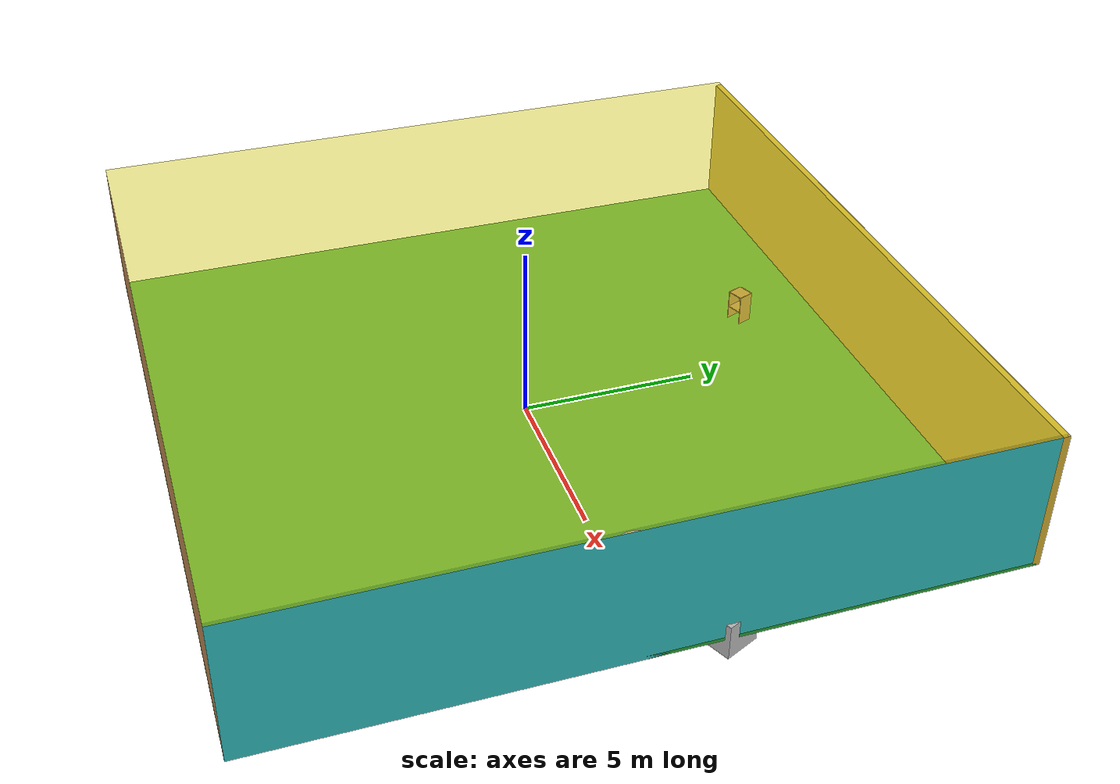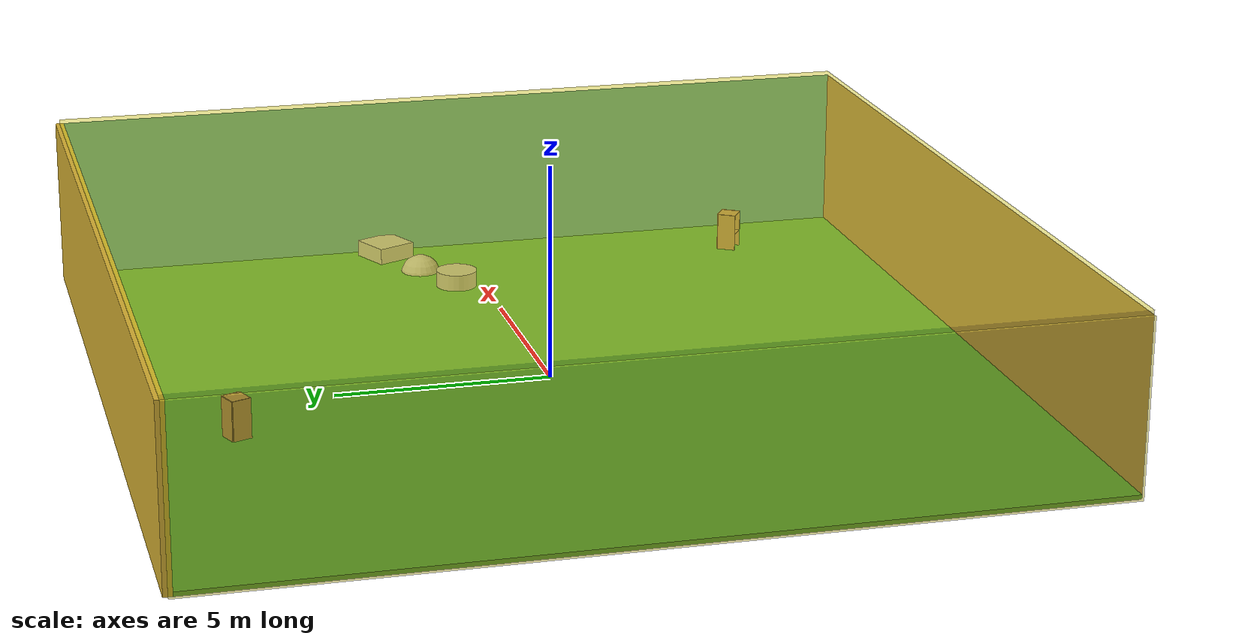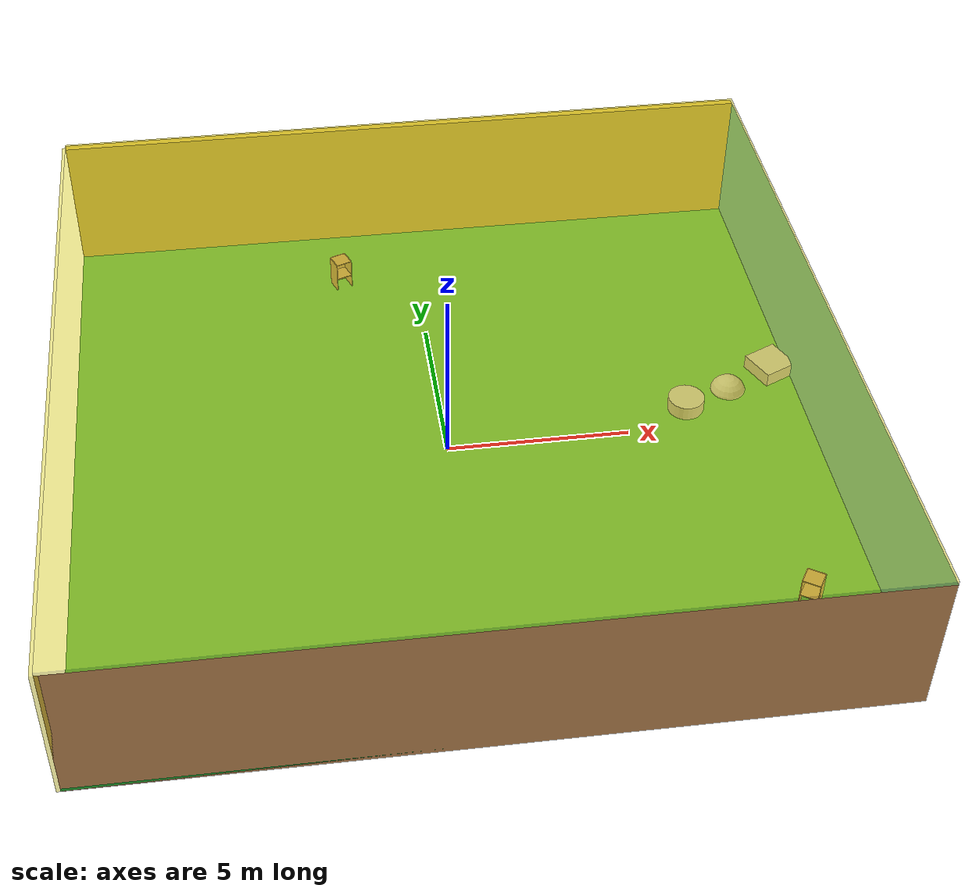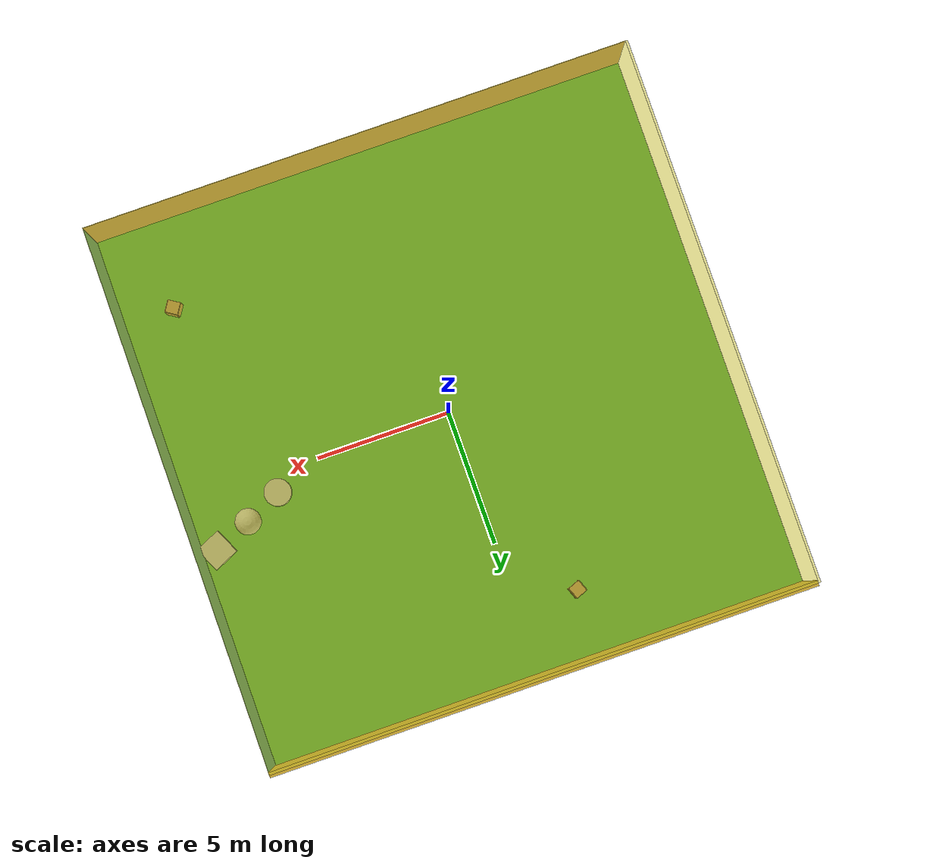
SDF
<sdf version="1.4">
 <world name="default">
  <physics type="ode">
   <max_step_size>0.001</max_step_size>
   <real_time_factor>1</real_time_factor>
   <real_time_update_rate>1000</real_time_update_rate>
   <gravity>0 0 -9.8</gravity>
  </physics>
  <scene><ambient>0.4 0.4 0.4 1</ambient><background>0.7 0.7 0.7 1</background><shadows>1</shadows></scene>
  <model name="Surrounding">
   <static>1</static>
   <link name="Ceiling">
    <collision name="Ceiling_Collision"><geometry><box><size>20 20 0.1</size></box></geometry></collision>
    <visual name="Ceiling_Visual">
     <geometry><box><size>20 20 0.1</size></box></geometry>
     <material>
      <script>
       <uri>file://media/materials/scripts/gazebo.material</uri>
       <name>Gazebo/YellowTransparent</name>
      </script>
     </material>
    </visual>
    <pose>0 0 4.05 0 0 0</pose>
   </link>
   <link name="Wall_South">
    <collision name="Wall_South_Collision">
     <geometry><box><size>20 0 4</size></box></geometry>
     <pose>0 0 2 0 -0 0</pose>
    </collision>
    <visual name="Wall_South_Visual">
     <pose>0 0 2 0 -0 0</pose>
     <geometry><box><size>20 0 4</size></box></geometry>
     <material>
      <script><uri>file://media/materials/scripts/gazebo.material</uri><name>Gazebo/Wood</name></script>
     </material>
    </visual>
    <velocity_decay><linear>0</linear><angular>0</angular></velocity_decay>
    <pose>0 -10 0 0 -0 0</pose>
   </link>
   <link name="Wall_East">
    <collision name="Wall_21_Collision">
     <geometry><box><size>20 0 4</size></box></geometry>
     <pose>0 0 2 0 -0 0</pose>
    </collision>
    <visual name="Wall_21_Visual">
     <pose>0 0 2 0 -0 0</pose>
     <geometry><box><size>20 0 4</size></box></geometry>
     <material>
      <script><uri>file://media/materials/scripts/gazebo.material</uri><name>Gazebo/TurquoiseGlow</name></script>
     </material>
    </visual>
    <velocity_decay><linear>0</linear><angular>0</angular></velocity_decay>
    <pose>10 0 0 0 -0 1.5708</pose>
   </link>
   <link name="Wall_North">
    <collision name="Wall_22_Collision">
     <geometry><box><size>20 0.2 4</size></box></geometry>
     <pose>0 0 2 0 -0 0</pose>
    </collision>
    <visual name="Wall_22_Visual">
     <pose>0 0 2 0 -0 0</pose>
     <geometry><box><size>20 0.2 4</size></box></geometry>
     <material>
      <script><uri>file://media/materials/scripts/gazebo.material</uri><name>Gazebo/Gold</name></script>
     </material>
    </visual>
    <velocity_decay><linear>0</linear><angular>0</angular></velocity_decay>
    <pose>0 10 0 0 -0 0</pose>
   </link>
   <link name="Wall_West">
    <collision name="Wall_23_Collision">
     <geometry><box><size>20 0.2 4</size></box></geometry>
     <pose>0 0 2 0 -0 0</pose>
    </collision>
    <visual name="Wall_23_Visual">
     <pose>0 0 2 0 -0 0</pose>
     <geometry><box><size>20 0.2 4</size></box></geometry>
     <material>
      <script>
       <uri>file://media/materials/scripts/gazebo.material</uri>
       <name>Gazebo/YellowTransparent</name>
      </script>
     </material>
    </visual>
    <velocity_decay><linear>0</linear><angular>0</angular></velocity_decay>
    <pose>-10 0 0 0 0 -1.5708</pose>
   </link>
   <link name="Ground_link">
    <collision name="collision">
     <pose>0 0 .05 0 -0 0</pose>
     <geometry><box><size>20 20 0.1</size></box></geometry>
    </collision>
    <visual name="visual">
     <pose>0 0 .05 0 -0 0</pose>
     <geometry><box><size>20 20 0.1</size></box></geometry>
     <material>
      <script><uri>file://media/materials/scripts/gazebo.material</uri><name>Gazebo/Green</name></script>
     </material>
    </visual>
   </link>
   <static>1</static>
  </model>
  <spherical_coordinates>
   <surface_model>EARTH_WGS84</surface_model>
   <latitude_deg>0</latitude_deg>
   <longitude_deg>0</longitude_deg>
   <elevation>0</elevation>
   <heading_deg>0</heading_deg>
  </spherical_coordinates>
  <light name="lightball_0" type="diffuse">
   <diffuse>0.8 0.8 0.8 1</diffuse>
   <specular>0.2 0.2 0.2 1</specular>
   <attenuation>
    <range>100</range>
    <constant>0.7</constant>
    <linear>0.01</linear>
    <quadratic>0.001</quadratic>
   </attenuation>
   <direction>-0.5 0.1 -0.9</direction>
   <pose>-9.87257258933 4.6745386704 2.11320592279 0 0 0</pose>
  </light>
  <light name="lightball_1" type="diffuse">
   <diffuse>0.8 0.8 0.8 1</diffuse>
   <specular>0.2 0.2 0.2 1</specular>
   <attenuation>
    <range>100</range>
    <constant>0.7</constant>
    <linear>0.01</linear>
    <quadratic>0.001</quadratic>
   </attenuation>
   <direction>-0.5 0.1 -0.9</direction>
   <pose>0.97652307727 5.2823808475 3.42060324967 0 0 0</pose>
  </light>
  <light name="lightball_2" type="diffuse">
   <diffuse>0.8 0.8 0.8 1</diffuse>
   <specular>0.2 0.2 0.2 1</specular>
   <attenuation>
    <range>100</range>
    <constant>0.7</constant>
    <linear>0.01</linear>
    <quadratic>0.001</quadratic>
   </attenuation>
   <direction>-0.5 0.1 -0.9</direction>
   <pose>4.50100407516 -0.313296749281 2.28344404201 0 0 0</pose>
  </light>
  <light name="lightball_3" type="diffuse">
   <diffuse>0.8 0.8 0.8 1</diffuse>
   <specular>0.2 0.2 0.2 1</specular>
   <attenuation>
    <range>100</range>
    <constant>0.7</constant>
    <linear>0.01</linear>
    <quadratic>0.001</quadratic>
   </attenuation>
   <direction>-0.5 0.1 -0.9</direction>
   <pose>0.869817379879 3.85373314808 2.13649224176 0 0 0</pose>
  </light>
  <light name="lightball_4" type="diffuse">
   <diffuse>0.8 0.8 0.8 1</diffuse>
   <specular>0.2 0.2 0.2 1</specular>
   <attenuation>
    <range>100</range>
    <constant>0.7</constant>
    <linear>0.01</linear>
    <quadratic>0.001</quadratic>
   </attenuation>
   <direction>-0.5 0.1 -0.9</direction>
   <pose>5.92308187193 7.96755494277 0.711787057402 0 0 0</pose>
  </light>
  <light name="lightball_5" type="diffuse">
   <diffuse>0.8 0.8 0.8 1</diffuse>
   <specular>0.2 0.2 0.2 1</specular>
   <attenuation>
    <range>100</range>
    <constant>0.7</constant>
    <linear>0.01</linear>
    <quadratic>0.001</quadratic>
   </attenuation>
   <direction>-0.5 0.1 -0.9</direction>
   <pose>-1.21836933931 -3.0990236191 1.16606263404 0 0 0</pose>
  </light>
  <light name="lightball_6" type="diffuse">
   <diffuse>0.8 0.8 0.8 1</diffuse>
   <specular>0.2 0.2 0.2 1</specular>
   <attenuation>
    <range>100</range>
    <constant>0.7</constant>
    <linear>0.01</linear>
    <quadratic>0.001</quadratic>
   </attenuation>
   <direction>-0.5 0.1 -0.9</direction>
   <pose>-9.6400500343 -5.14632199544 3.40847541767 0 0 0</pose>
  </light>
  <light name="lightball_7" type="diffuse">
   <diffuse>0.8 0.8 0.8 1</diffuse>
   <specular>0.2 0.2 0.2 1</specular>
   <attenuation>
    <range>100</range>
    <constant>0.7</constant>
    <linear>0.01</linear>
    <quadratic>0.001</quadratic>
   </attenuation>
   <direction>-0.5 0.1 -0.9</direction>
   <pose>-1.11517067383 7.00443758186 2.5111553152 0 0 0</pose>
  </light>
  <light name="lightball_8" type="diffuse">
   <diffuse>0.8 0.8 0.8 1</diffuse>
   <specular>0.2 0.2 0.2 1</specular>
   <attenuation>
    <range>100</range>
    <constant>0.7</constant>
    <linear>0.01</linear>
    <quadratic>0.001</quadratic>
   </attenuation>
   <direction>-0.5 0.1 -0.9</direction>
   <pose>-5.80163766723 -6.09447034365 2.47172563615 0 0 0</pose>
  </light>
  <include><uri>model://cabinet</uri><pose>-2.23624919643 7.51652623676 0 0 0 1.93476721442</pose></include>
  <include><uri>model://cabinet</uri><pose>8.11846039385 -6.76668386342 0 0 0 1.00046496665</pose></include>
  <include>
   <uri>model://textured_shapes</uri>
   <pose>8.11227469935 1.33893723477 0 0 0 2.00288975629</pose>
  </include>
 </world>
</sdf>

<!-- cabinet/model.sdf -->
<sdf version="1.5">
  <model name="cabinet">
    <static>true</static>
    <link name="cabinet_bottom_plate">
      <inertial>
        <pose>0 0 -1 0 0 0</pose>
        <inertia>
          <ixx>2.050000</ixx>
          <ixy>0</ixy>
          <ixz>0</ixz>
          <iyy>2.050000</iyy>
          <iyz>0</iyz>
          <izz>2.050000</izz>
        </inertia>
        <mass>25.000000</mass>
      </inertial>
      <collision name="cabinet_bottom_plate_geom">
        <pose>0 0 0.010000 0 0 0</pose>
        <geometry>
          <box>
            <size>0.450000 0.450000 0.020000</size>
          </box>
        </geometry>
      </collision>
      <visual name="cabinet_bottom_plate_geom_visual">
        <pose>0 0 0.010000 0 0 0</pose>
        <geometry>
          <box>
            <size>0.450000 0.450000 0.020000</size>
          </box>
        </geometry>
        <material>
          <script>
            <uri>model://media/materials/scripts/gazebo.material</uri>
            <name>Gazebo/Wood</name>
          </script>
        </material>
      </visual>
      <collision name="cabinet_bottom_plate_geom_cabinet_back_plate">
        <pose>0.235000 0 0.510000 0 0 0</pose>
        <geometry>
          <box>
            <size>0.020000 0.450000 1.020000</size>
          </box>
        </geometry>
      </collision>
      <visual name="cabinet_bottom_plate_geom_cabinet_back_plate_visual">
        <pose>0.235000 0 0.510000 0 0 0</pose>
        <geometry>
          <box>
            <size>0.020000 0.450000 1.020000</size>
          </box>
        </geometry>
        <material>
          <script>
            <uri>model://media/materials/scripts/gazebo.material</uri>
            <name>Gazebo/Wood</name>
          </script>
        </material>
      </visual>
      <collision name="cabinet_bottom_plate_geom_cabinet_left_plate">
        <pose>0 0.235000 0.510000 0 0 0</pose>
        <geometry>
          <box>
            <size>0.450000 0.020000 1.020000</size>
          </box>
        </geometry>
      </collision>
      <visual name="cabinet_bottom_plate_geom_cabinet_left_plate_visual">
        <pose>0 0.235000 0.510000 0 0 0</pose>
        <geometry>
          <box>
            <size>0.450000 0.020000 1.020000</size>
          </box>
        </geometry>
        <material>
          <script>
            <uri>model://media/materials/scripts/gazebo.material</uri>
            <name>Gazebo/Wood</name>
          </script>
        </material>
      </visual>
      <collision name="cabinet_bottom_plate_geom_cabinet_middle_plate">
        <pose>0 0 0.510000 0 0 0</pose>
        <geometry>
          <box>
            <size>0.450000 0.450000 0.020000</size>
          </box>
        </geometry>
      </collision>
      <visual name="cabinet_bottom_plate_geom_cabinet_middle_plate_visual">
        <pose>0 0 0.510000 0 0 0</pose>
        <geometry>
          <box>
            <size>0.450000 0.450000 0.020000</size>
          </box>
        </geometry>
        <material>
          <script>
            <uri>model://media/materials/scripts/gazebo.material</uri>
            <name>Gazebo/Wood</name>
          </script>
        </material>
      </visual>
      <collision name="cabinet_bottom_plate_geom_cabinet_right_plate">
        <pose>0 -0.235000 0.510000 0 0 0</pose>
        <geometry>
          <box>
            <size>0.450000 0.020000 1.020000</size>
          </box>
        </geometry>
      </collision>
      <visual name="cabinet_bottom_plate_geom_cabinet_right_plate_visual">
        <pose>0 -0.235000 0.510000 0 0 0</pose>
        <geometry>
          <box>
            <size>0.450000 0.020000 1.020000</size>
          </box>
        </geometry>
        <material>
          <script>
            <uri>model://media/materials/scripts/gazebo.material</uri>
            <name>Gazebo/Wood</name>
          </script>
        </material>
      </visual>
      <collision name="cabinet_bottom_plate_geom_cabinet_top_plate">
        <pose>0 0 1.010000 0 0 0</pose>
        <geometry>
          <box>
            <size>0.450000 0.450000 0.020000</size>
          </box>
        </geometry>
      </collision>
      <visual name="cabinet_bottom_plate_geom_cabinet_top_plate_visual">
        <pose>0 0 1.010000 0 0 0</pose>
        <geometry>
          <box>
            <size>0.450000 0.450000 0.020000</size>
          </box>
        </geometry>
        <material>
          <script>
            <uri>model://media/materials/scripts/gazebo.material</uri>
            <name>Gazebo/Wood</name>
          </script>
        </material>
      </visual>
    </link>
  </model>
</sdf>

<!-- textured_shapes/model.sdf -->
<sdf version="1.6">
  <model name="textured_shapes">
    <pose>0 0 0.5 0 0 0</pose>
    <link name="box">
      <pose>0 -1.5 0 0 0 0</pose>
      <collision name="collision">
        <geometry>
          <box>
            <size>1 1 1</size>
          </box>
        </geometry>
      </collision>
      <visual name="visual">
        <geometry>
          <box>
            <size>1 1 1</size>
          </box>
        </geometry>
        <material>
          <script>
            <uri>model://../model_source/models/textured_shapes/materials/scripts</uri>
            <uri>model://../model_source/models/textured_shapes/materials/textures</uri>
            <name>TexturedShape/Squares</name>
          </script>
        </material>
      </visual>
    </link>
    <link name="sphere">
      <collision name="collision">
        <geometry>
          <sphere>
            <radius>0.5</radius>
          </sphere>
        </geometry>
      </collision>
      <visual name="visual">
        <geometry>
          <sphere>
            <radius>0.5</radius>
          </sphere>
        </geometry>
        <material>
          <script>
            <uri>model://../model_source/models/textured_shapes/materials/scripts</uri>
            <uri>model://../model_source/models/textured_shapes/materials/textures</uri>
            <name>TexturedShape/Squares</name>
          </script>
        </material>
      </visual>
    </link>
    <link name="cylinder">
      <pose>0 1.5 0 0 0 0</pose>
      <collision name="collision">
        <geometry>
          <cylinder>
            <radius>0.5</radius>
            <length>1</length>
          </cylinder>
        </geometry>
      </collision>
      <visual name="visual">
        <geometry>
          <cylinder>
            <radius>0.5</radius>
            <length>1</length>
          </cylinder>
        </geometry>
        <material>
          <script>
            <uri>model://../model_source/models/textured_shapes/materials/scripts</uri>
            <uri>model://../model_source/models/textured_shapes/materials/textures</uri>
            <name>TexturedShape/Squares</name>
          </script>
        </material>
      </visual>
    </link>
  </model>
</sdf>
